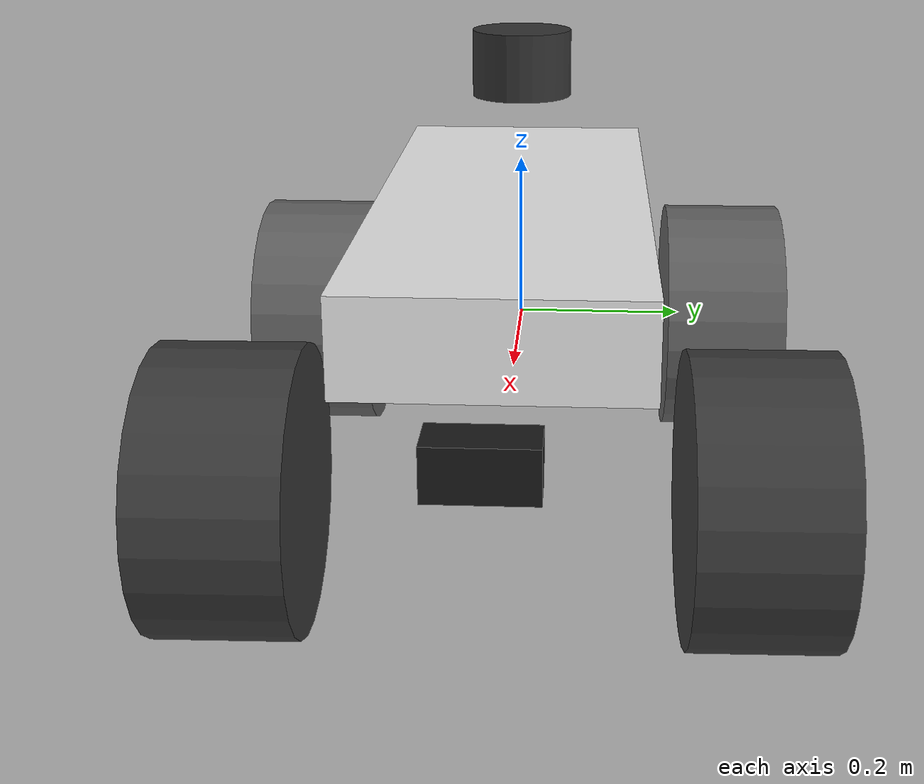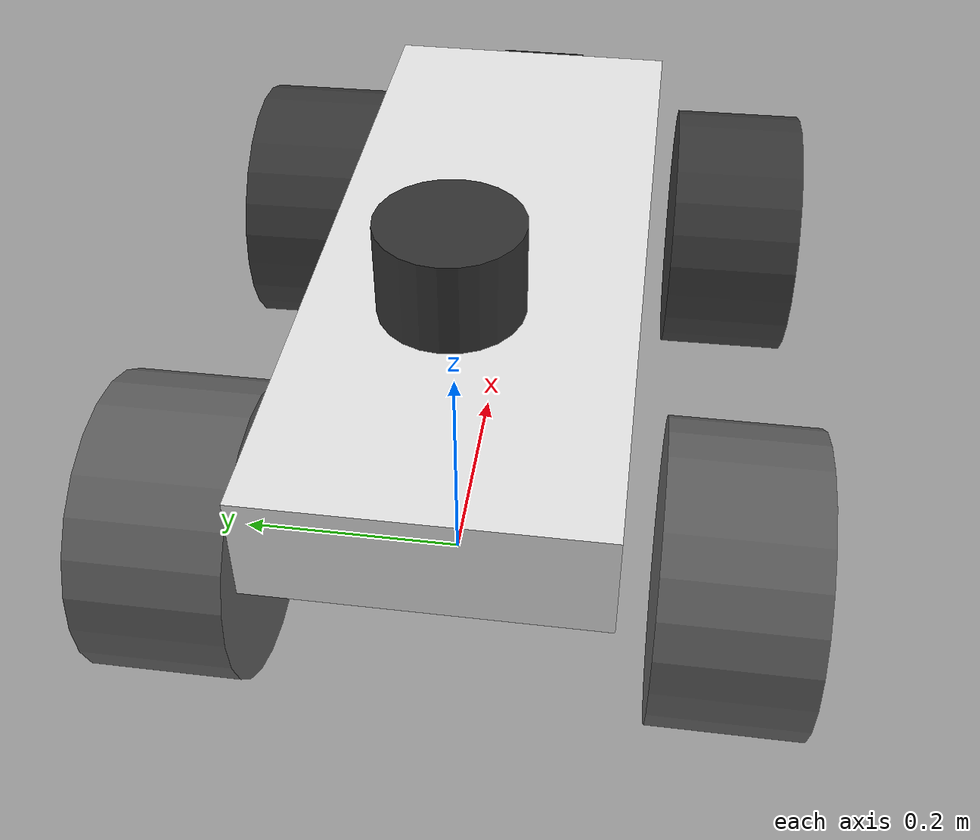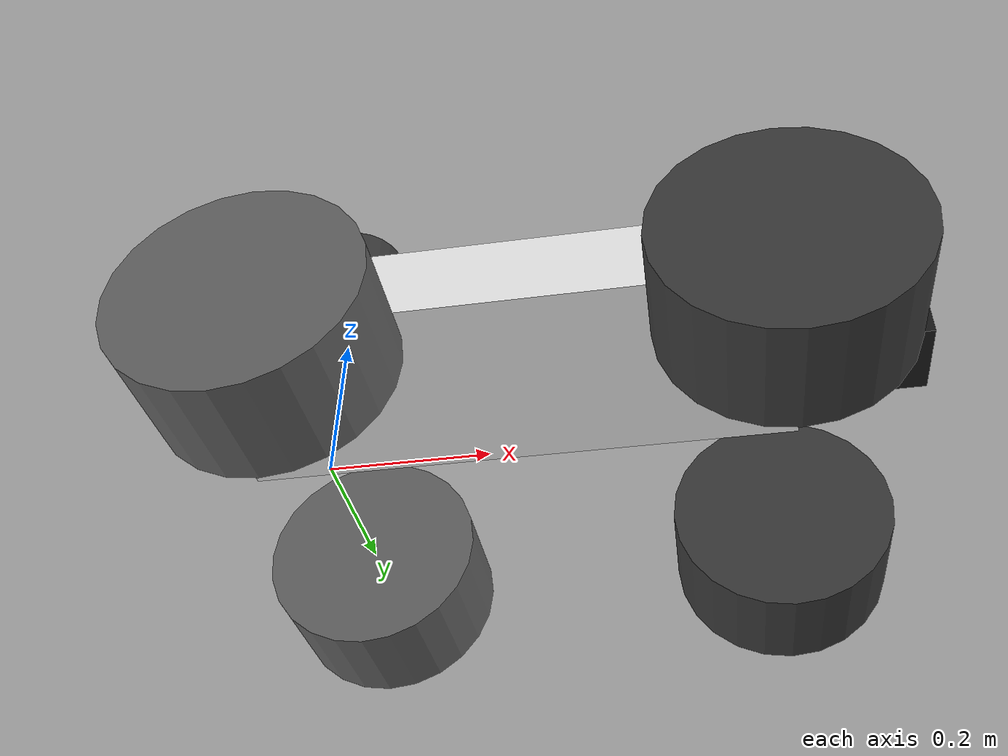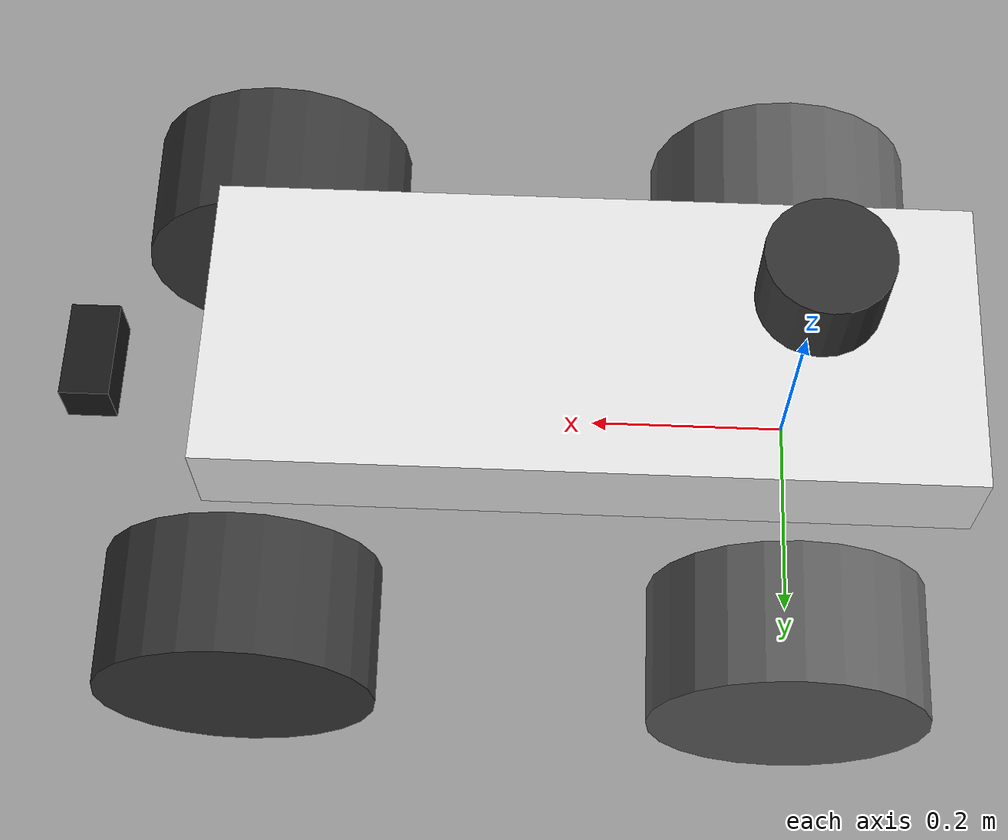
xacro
<?xml version="1.0"?>
<!-- URDF of Robot Simulation -->
<robot xmlns:xacro="http://www.ros.org/wiki/xacro"  name="bot_ackermann">

    <material name="Gray">
    <color rgba="0.5 0.5 0.5 1.0"/>
    </material>

    <material name="DarkGray">
    <color rgba="0.2 0.2 0.2 1.0"/>
    </material>

    <!-- Physical Description -->
    <xacro:include filename="bot_base.xacro" />
    <!-- Simulation -->
    <xacro:include filename="gz_ackermann_core.xacro" />

    <!-- lidar -->

    <!-- 3D lidar -->
    <xacro:include filename="lidar_3d.xacro"/>

    <xacro:lidar_3d
        parent_link="base_link"
        lidar_name="top_3d_lidar"
        xyz="0 0 0.32"
        rpy="0 0 0"/>

    <!-- RGBD  -->
    <xacro:include filename="RGBD_sensor.xacro"/>

    <xacro:rgbd_sensor
        parent_link="chassis_link"
        sensor_name="front_rgbd"
        x="0.5" y="0.0" z="-0.05"
        width="640" height="480"
        fps="30.0"
        fov="1.0472"
        near="0.1" far="30.0"/>

</robot>

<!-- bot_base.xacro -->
<robot xmlns:xacro="http://www.ros.org/wiki/xacro">

    <xacro:property name="body_mass" value="25.0" />
    <xacro:property name="body_width" value="0.3" />
    <xacro:property name="body_length" value="0.10" />
    <xacro:property name="body_depth" value="0.75" />

    <xacro:property name="wheel_radius" value="0.14" />
    <xacro:property name="wheel_thickness" value="0.14" />
    <xacro:property name="wheel_mass" value="3.0" />
    <xacro:property name="steering_mass" value="0.01" />

    <!-- BASE -->
    <link name="base_footprint">
            <origin xyz="0 0 0" rpy="0 0 0" />
    </link>

    <link name="base_link">
    </link>
    <joint name="base_joint" type="fixed">
        <parent link="base_footprint" />
        <child link="base_link" />
        <origin xyz="0.0 0.0 0.0" rpy="0 0 0" />
    </joint>

    <link name="chassis_link">
        <inertial>
            <origin xyz="0.0374140021041951 -0.000373005187591258 -0.0771282894414029" rpy="0 0 0" />
            <mass value="24.73" />
            <inertia ixx="${body_mass/12 * (body_width*body_width + body_length*body_length)}"
                ixy="0" ixz="0"
                iyy="${body_mass/12 * (body_length*body_length + body_depth*body_depth)}" iyz="0"
                izz="${body_mass/12 * (body_width*body_width + body_depth*body_depth)}" />
        </inertial>
        <visual>
            <origin xyz="0 0 0" rpy="0 0 0" />
            <geometry>
                <box size="0.75 0.3 0.10" />
            </geometry>
        </visual>
        <collision>
            <origin xyz="0.07 0 -0.05" rpy="0 0 0" />
            <geometry>
                <box size="0.75 0.3 0.10" />
            </geometry>
        </collision>
    </link>
    <joint name="chassis_joint" type="fixed">
        <parent link="base_link" />
        <child link="chassis_link" />
        <origin xyz="0.2078 0.0 0.1555" rpy="0 0 0" />
    </joint>

    <!-- FRONT LEFT WHEEL -->
    <link name="fr_left_steer_link">
        <inertial>
            <origin xyz="-0.0002776492198312 0.0163539773588368 4.97346169803237E-09" rpy="0 0 0" />
            <mass value="${steering_mass}" />
            <inertia
                ixx="${steering_mass/12*(3*wheel_radius*wheel_radius + wheel_thickness*wheel_thickness)}"
                ixy="0" ixz="0"
                iyy="${steering_mass/12*(3*wheel_radius*wheel_radius + wheel_thickness*wheel_thickness)}"
                iyz="0" izz="${steering_mass/2 * wheel_radius*wheel_radius}" />
        </inertial>
    </link>
    <joint name="fr_left_steer_joint" type="revolute">
        <origin xyz="0.34058 0.24619 -0.1535" rpy="0 0 0" />
        <parent link="chassis_link" />
        <child link="fr_left_steer_link" />
        <axis xyz="0 0 1" />
        <limit upper="0.6" lower="-0.6" effort="-1.0" velocity="-1.0" />
    </joint>
    <link name="fr_left_wheel_link">
        <inertial>
            <origin xyz="-3.5837499634539E-10 4.97346158701006E-09 -0.016356334080185" rpy="0 0 0" />
            <mass value="${wheel_mass}" />
            <inertia
                ixx="${wheel_mass/12*(3*wheel_radius*wheel_radius + wheel_thickness*wheel_thickness)}"
                ixy="0" ixz="0"
                iyy="${wheel_mass/12*(3*wheel_radius*wheel_radius + wheel_thickness*wheel_thickness)}"
                iyz="0" izz="${wheel_mass/2 * wheel_radius*wheel_radius}" />
        </inertial>
        <visual>
            <origin xyz="0 0 0" rpy="0 0 0" />
            <geometry>
                <cylinder radius="${wheel_radius}" length="${wheel_thickness}" />
            </geometry>
            <material name="">
                <color rgba="0.223529411764706 0.223529411764706 0.223529411764706 1" />
            </material>
        </visual>
        <collision>
            <origin xyz="0 0 0" rpy="0 0 0" />
            <geometry>
                <cylinder radius="${wheel_radius}" length="${wheel_thickness}" />
            </geometry>
        </collision>
    </link>
    <joint name="fr_left_wheel_joint" type="continuous">
        <origin xyz="0 0 0" rpy="1.5708 0 0.016976" />
        <parent link="fr_left_steer_link" />
        <child link="fr_left_wheel_link" />
        <axis xyz="0 0 -1" />
        <dynamics friction="0.8" damping="0.5" />
        <limit lower="-3.14159" upper="3.14159" effort="200" velocity="-1" />

    </joint>

    <!-- FRONT RIGHT WHEEL -->
    <link name="fr_right_steer_link">
        <inertial>
            <origin xyz="0.000274981985673328 -0.0163540222836661 -3.24802407192237E-11" rpy="0 0 0" />
            <mass value="${steering_mass}" />
            <inertia
                ixx="${steering_mass/12*(3*wheel_radius*wheel_radius + wheel_thickness*wheel_thickness)}"
                ixy="0" ixz="0"
                iyy="${steering_mass/12*(3*wheel_radius*wheel_radius + wheel_thickness*wheel_thickness)}"
                iyz="0" izz="${steering_mass/2 * wheel_radius*wheel_radius}" />
        </inertial>
    </link>
    <joint name="fr_right_steer_joint" type="revolute">
        <origin xyz="0.34219 -0.24619 -0.1535" rpy="0 0 0" />
        <parent link="chassis_link" />
        <child link="fr_right_steer_link" />
        <axis xyz="0 0 1" />
        <limit upper="0.6" lower="-0.6" effort="-1.0" velocity="-1.0" />
    </joint>
    <link name="fr_right_wheel_link">
        <inertial>
            <origin xyz="0.00027498198567355 3.24801296969213E-11 -0.0163540222836661" rpy="0 0 0" />
            <mass value="${wheel_mass}" />
            <inertia
                ixx="${wheel_mass/12*(3*wheel_radius*wheel_radius + wheel_thickness*wheel_thickness)}"
                ixy="0" ixz="0"
                iyy="${wheel_mass/12*(3*wheel_radius*wheel_radius + wheel_thickness*wheel_thickness)}"
                iyz="0" izz="${wheel_mass/2 * wheel_radius*wheel_radius}" />
        </inertial>
        <visual>
            <origin xyz="0 0 0" rpy="0 0 0" />
            <geometry>
                <cylinder radius="${wheel_radius}" length="${wheel_thickness}" />
            </geometry>
            <material name="">
                <color rgba="0.223529411764706 0.223529411764706 0.223529411764706 1" />
            </material>
        </visual>
        <collision>
            <origin xyz="0 0 0" rpy="0 0 0" />
            <geometry>
                <cylinder radius="${wheel_radius}" length="${wheel_thickness}" />
            </geometry>
        </collision>
    </link>
    <joint name="fr_right_wheel_joint" type="continuous">
        <origin xyz="0 0 0" rpy="-1.5708 0 0.016976" />
        <parent link="fr_right_steer_link" />
        <child link="fr_right_wheel_link" />
        <axis xyz="0 0 1" />
        <dynamics friction="0.8" damping="0.5" />
        <limit lower="-3.14159" upper="3.14159" effort="200" velocity="-1" />

    </joint>

    <!-- REAR LEFT WHEEL -->
    <link name="re_left_wheel_link">
        <inertial>
            <origin xyz="1.245E-09 1.7252E-06 -0.010284" rpy="0 0 0" />
            <mass value="${wheel_mass}" />
            <inertia
                ixx="${wheel_mass/12*(3*wheel_radius*wheel_radius + wheel_thickness*wheel_thickness)}"
                ixy="0" ixz="0"
                iyy="${wheel_mass/12*(3*wheel_radius*wheel_radius + wheel_thickness*wheel_thickness)}"
                iyz="0" izz="${wheel_mass/2 * wheel_radius*wheel_radius}" />
        </inertial>
        <visual>
            <origin xyz="0 0 0" rpy="0 0 0" />
            <geometry>
                <cylinder radius="${wheel_radius}" length="${wheel_thickness}" />
            </geometry>
            <material name="">
                <color rgba="0.37647 0.37647 0.37647 1" />
            </material>
        </visual>
        <collision>
            <origin xyz="0 0 0" rpy="0 0 0" />
            <geometry>
                <cylinder radius="${wheel_radius}" length="${wheel_thickness}" />
            </geometry>
        </collision>
    </link>
    <joint name="re_left_wheel_joint" type="continuous">
        <origin xyz="-0.2078 0.252 -0.158" rpy="1.5708 0 0" />
        <parent link="chassis_link" />
        <child link="re_left_wheel_link" />
        <axis xyz="0 0 -1" />
        <dynamics friction="0.8" damping="0.5" />
        <limit lower="-3.14159" upper="3.14159" effort="70" velocity="-1" />

    </joint>

    <!-- REAR RIGHT WHEEL -->
    <link name="re_right_wheel_link">
        <inertial>
            <origin xyz="0 0 0" rpy="0 0 0" />
            <mass value="${wheel_mass}" />
            <inertia
                ixx="${wheel_mass/12*(3*wheel_radius*wheel_radius + wheel_thickness*wheel_thickness)}"
                ixy="0" ixz="0"
                iyy="${wheel_mass/12*(3*wheel_radius*wheel_radius + wheel_thickness*wheel_thickness)}"
                iyz="0" izz="${wheel_mass/2 * wheel_radius*wheel_radius}" />
        </inertial>
        <visual>
            <origin xyz="0 0 0" rpy="0 0 0" />
            <geometry>
                <cylinder radius="${wheel_radius}" length="${wheel_thickness}" />
            </geometry>
            <material name="">
                <color rgba="0.37647 0.37647 0.37647 1" />
            </material>
        </visual>
        <collision>
            <origin xyz="0 0 0" rpy="0 0 0" />
            <geometry>
                <cylinder radius="${wheel_radius}" length="${wheel_thickness}" />
            </geometry>
        </collision>
    </link>
    <joint name="re_right_wheel_joint" type="continuous">
        <origin xyz="-0.2078 -0.252 -0.158" rpy="-1.5708 0 0" />
        <parent link="chassis_link" />
        <child link="re_right_wheel_link" />
        <axis xyz="0 0 1" />

        <dynamics friction="0.8" damping="0.5" />
        <limit lower="-3.14159" upper="3.14159" effort="70" velocity="-1" />

    </joint>
</robot>

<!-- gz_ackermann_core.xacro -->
<robot xmlns:xacro="http://www.ros.org/wiki/xacro">
    <!-- GAZEBO COLOUR -->
    <!-- Instead, we need to add gazebo tags for our links that refer to Gazebo materials -->
    <gazebo reference="chassis_link">
        <material>Gazebo/White</material>
        <mu1>0.5</mu1>
        <mu2>0.5</mu2>
    </gazebo>
    <gazebo reference="fr_left_wheel_link">
        <material>Gazebo/Grey</material>
        <mu1>1.0</mu1>
        <mu2>1.0</mu2>
    </gazebo>
    <gazebo reference="fr_right_wheel_link">
        <material>Gazebo/Grey</material>
        <mu1>1.0</mu1>
        <mu2>1.0</mu2>
    </gazebo>
    <gazebo reference="re_left_wheel_link">
        <material>Gazebo/Grey</material>
        <mu1>1.0</mu1>
        <mu2>1.0</mu2>
    </gazebo>
    <gazebo reference="re_right_wheel_link">
        <material>Gazebo/Grey</material>
        <mu1>1.0</mu1>
        <mu2>1.0</mu2>
    </gazebo>
    <gazebo reference="virtual_steer_link">
        <material>Gazebo/Yellow</material>
    </gazebo>

    <!-- JOINT STATE PUBLISHER -->
    <!-- Gazebo requires the use of plugins to interact with other systems such as ROS. -->
    <gazebo>
        <plugin name="gazebo_ros_joint_state_publisher"
            filename="libgazebo_ros_joint_state_publisher.so">
            <update_rate>1000</update_rate>
            <joint_name>fr_right_steer_joint</joint_name>
            <joint_name>fr_right_wheel_joint</joint_name>
            <joint_name>fr_left_steer_joint</joint_name>
            <joint_name>fr_left_wheel_joint</joint_name>
            <joint_name>re_right_wheel_joint</joint_name>
            <joint_name>re_left_wheel_joint</joint_name>
            <joint_name>virtual_steering_wheel_joint</joint_name>
        </plugin>
    </gazebo>

    <!-- This plugin will read a JointTrajectory message from the /set_joint_trajectory topic
            and move the machine accordingly. It's a bit clunky but it works. -->
    <gazebo>
        <plugin name="gazebo_ros_joint_pose_trajectory"
            filename="libgazebo_ros_joint_pose_trajectory.so">
            <update_rate>2</update_rate>
        </plugin>
    </gazebo>

    <!-- ACKERMANN DRIVE PLUGIN -->
    <gazebo>
        <plugin name='gazebo_ackermann_drive' filename='libgazebo_ros_ackermann_drive.so'>
            <ros>
                <remapping>cmd_vel:=cmd_vel</remapping>
                <remapping>odom:=odom/bot</remapping>
                <remapping>distance:=distance/bot</remapping>
            </ros>

            <update_rate>190.0</update_rate>

            <!-- wheels -->
            <front_left_joint>fr_left_wheel_joint</front_left_joint>
            <front_right_joint>fr_right_wheel_joint</front_right_joint>
            <rear_left_joint>re_left_wheel_joint</rear_left_joint>
            <rear_right_joint>re_right_wheel_joint</rear_right_joint>
            <left_steering_joint>fr_left_steer_joint</left_steering_joint>
            <right_steering_joint>fr_right_steer_joint</right_steering_joint>
            <steering_wheel_joint>virtual_steering_wheel_joint</steering_wheel_joint>

            <!-- Max absolute steer angle for tyre in radians-->
            <!-- Any cmd_vel angular z greater than this would be capped -->
            <max_steer>0.383972</max_steer>

            <!-- Max absolute steering angle of steering wheel -->
            <max_steering_angle>1.570796</max_steering_angle>

            <!-- Max absolute linear speed in m/s -->
            <max_speed>100</max_speed>

            <!-- PID tuning -->
            <left_steering_pid_gain>1500 0 1</left_steering_pid_gain>
            <left_steering_i_range>0 0</left_steering_i_range>
            <right_steering_pid_gain>1500 0 1</right_steering_pid_gain>
            <right_steering_i_range>0 0</right_steering_i_range>
            <linear_velocity_pid_gain>1500 0 1</linear_velocity_pid_gain>
            <linear_velocity_i_range>0 0</linear_velocity_i_range>

            <!-- output -->
            <publish_odom>true</publish_odom>
            <publish_odom_tf>true</publish_odom_tf>     <!-- Don't pubslish this when using robot
            localization -->
            <publish_wheel_tf>false</publish_wheel_tf>  <!-- Don't publish this. It will override all
            wheel frames to robot_base_frame parameter below.-->
            <publish_distance>true</publish_distance>

            <odometry_frame>odom</odometry_frame>
            <robot_base_frame>base_footprint</robot_base_frame>

        </plugin>
    </gazebo>

    <!-- Virtual Steering wheel -->
    <link name="virtual_steer_link">
        <visual>
            <origin xyz="0.0 0.0 0.0" rpy="0.0 0.0 0.0" />
            <geometry>
                <box size="0.01 0.15 0.075" />
            </geometry>
            <material name="">
                <color rgba="1.0 1.0 0.0 1" />
            </material>
        </visual>
        <inertial>  <!-- Gazebo won't show this link without this inertial mass -->
            <origin xyz="0.0 0.0 0.0" rpy="0.0 0.0 0.0" />
            <mass value="0.001" />
            <inertia ixx="0.0" ixy="0.0" ixz="0.0" iyy="0.0" iyz="0.0" izz="0.0" />
        </inertial>
    </link>
    <joint name="virtual_steering_wheel_joint" type="revolute">
        <origin xyz="-0.32 0.0 0.0" rpy="0.0 0.0 0.0" />
        <parent link="chassis_link" />
        <child link="virtual_steer_link" />
        <axis xyz="-1 0 0" />
        <limit lower="-3" upper="3" effort="200" velocity="20" />
    </joint>

</robot>

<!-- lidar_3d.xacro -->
<robot xmlns:xacro="http://www.ros.org/wiki/xacro">

  <!-- 3D LiDAR Macro -->
  <xacro:macro name="lidar_3d"
               params="
                 parent_link
                 lidar_name
                 xyz
                 rpy
                 h_samples:=1024
                 h_min:=-3.14159
                 h_max:=3.14159
                 v_samples:=16
                 v_min:=-0.1308995
                 v_max:=0.261799
                 range_min:=0.1
                 range_max:=50.0
                 update_rate:=10">

    <!-- LiDAR link -->
    <link name="${lidar_name}_link">
      <visual>
        <geometry>
          <cylinder radius="0.06" length="0.08"/>
        </geometry>
        <material name="DarkGray"/>
      </visual>
      <collision>
        <geometry>
          <cylinder radius="0.06" length="0.08"/>
        </geometry>
      </collision>
      <inertial>
        <mass value="0.5"/>
        <origin xyz="0 0 0" rpy="0 0 0"/>
        <inertia
          ixx="0.001" ixy="0" ixz="0"
          iyy="0.001" iyz="0"
          izz="0.001"/>
      </inertial>
    </link>

    <!-- Fixed joint to base -->
    <joint name="${lidar_name}_joint" type="fixed">
      <parent link="${parent_link}"/>
      <child link="${lidar_name}_link"/>
      <origin xyz="${xyz}" rpy="${rpy}"/>
    </joint>

    <!-- Gazebo sensor -->
    <gazebo reference="${lidar_name}_link">
      <sensor type="ray" name="${lidar_name}">
        <pose>0 0 0 0 0 0</pose>
        <visualize>false</visualize>
        <update_rate>${update_rate}</update_rate>

        <ray>
          <scan>
            <horizontal>
              <samples>${h_samples}</samples>
              <resolution>1</resolution>
              <min_angle>${h_min}</min_angle>
              <max_angle>${h_max}</max_angle>
            </horizontal>
            <vertical>
              <samples>${v_samples}</samples>
              <resolution>1</resolution>
              <min_angle>${v_min}</min_angle>
              <max_angle>${v_max}</max_angle>
            </vertical>
          </scan>

          <range>
            <min>${range_min}</min>
            <max>${range_max}</max>
            <resolution>0.01</resolution>
          </range>

          <noise>
            <type>gaussian</type>
            <mean>0.0</mean>
            <stddev>0.01</stddev>
          </noise>
        </ray>

        <plugin name="${lidar_name}_plugin" filename="libgazebo_ros_ray_sensor.so">
          <ros>
            <namespace>/</namespace>
            <remapping>out:=scan</remapping>
          </ros>
          <frame_name>${lidar_name}_link</frame_name>
        </plugin>
      </sensor>
    </gazebo>

  </xacro:macro>

</robot>

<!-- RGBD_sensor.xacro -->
<robot xmlns:xacro="http://www.ros.org/wiki/xacro">

  <xacro:macro name="rgbd_sensor"
               params="parent_link sensor_name x y z width height fps fov near far">

    <!-- Physical camera body -->
    <link name="${sensor_name}_link">
      <visual>
        <origin xyz="0 0 0" rpy="0 0 0"/>
        <geometry>
          <box size="0.05 0.10 0.05"/>
        </geometry>
        <material name="">
          <color rgba="0.1 0.1 0.1 1.0"/>
        </material>
      </visual>
      <inertial>
        <origin xyz="0 0 0" rpy="0 0 0"/>
        <mass value="0.01"/>
        <inertia ixx="1e-6" ixy="0" ixz="0" iyy="1e-6" iyz="0" izz="1e-6"/>
      </inertial>
    </link>

    <!-- Optical frame (REP-103) -->
    <link name="${sensor_name}_optical_frame">
      <inertial>
        <origin xyz="0 0 0" rpy="0 0 0"/>
        <mass value="1e-6"/>
        <inertia ixx="1e-9" ixy="0" ixz="0" iyy="1e-9" iyz="0" izz="1e-9"/>
      </inertial>
    </link>

    <!-- Mount camera body to parent -->
    <joint name="${sensor_name}_joint" type="fixed">
      <origin xyz="${x} ${y} ${z}" rpy="0 0 0"/>
      <parent link="${parent_link}"/>
      <child  link="${sensor_name}_link"/>
    </joint>

    <!-- Optical frame rotation (x right, y down, z forward) -->
    <joint name="${sensor_name}_optical_joint" type="fixed">
      <origin xyz="0 0 0" rpy="${-pi/2} 0 ${-pi/2}"/>
      <parent link="${sensor_name}_link"/>
      <child  link="${sensor_name}_optical_frame"/>
    </joint>

    <!-- Gazebo sensor + ROS2 plugin -->
    <gazebo reference="${sensor_name}_link">
      <sensor type="depth" name="${sensor_name}_sensor">
        <always_on>true</always_on>
        <update_rate>${fps}</update_rate>
        <visualize>true</visualize>

        <camera name="${sensor_name}_camera">
          <horizontal_fov>${fov}</horizontal_fov>
          <image>
            <width>${width}</width>
            <height>${height}</height>
            <format>R8G8B8</format>
          </image>
          <clip>
            <near>${near}</near>
            <far>${far}</far>
          </clip>
        </camera>

        <!-- IMPORTANT: use ROS2 unified camera plugin -->
        <plugin name="${sensor_name}_plugin" filename="libgazebo_ros_camera.so">
          <!-- ROS 2 style parameters for gazebo_ros_camera -->
          <camera_name>${sensor_name}</camera_name>
          <frame_name>${sensor_name}_optical_frame</frame_name>

          <!-- Depth limits used by the plugin as well -->
          <min_depth>${near}</min_depth>
          <max_depth>${far}</max_depth>
        </plugin>
      </sensor>
    </gazebo>

  </xacro:macro>

</robot>
